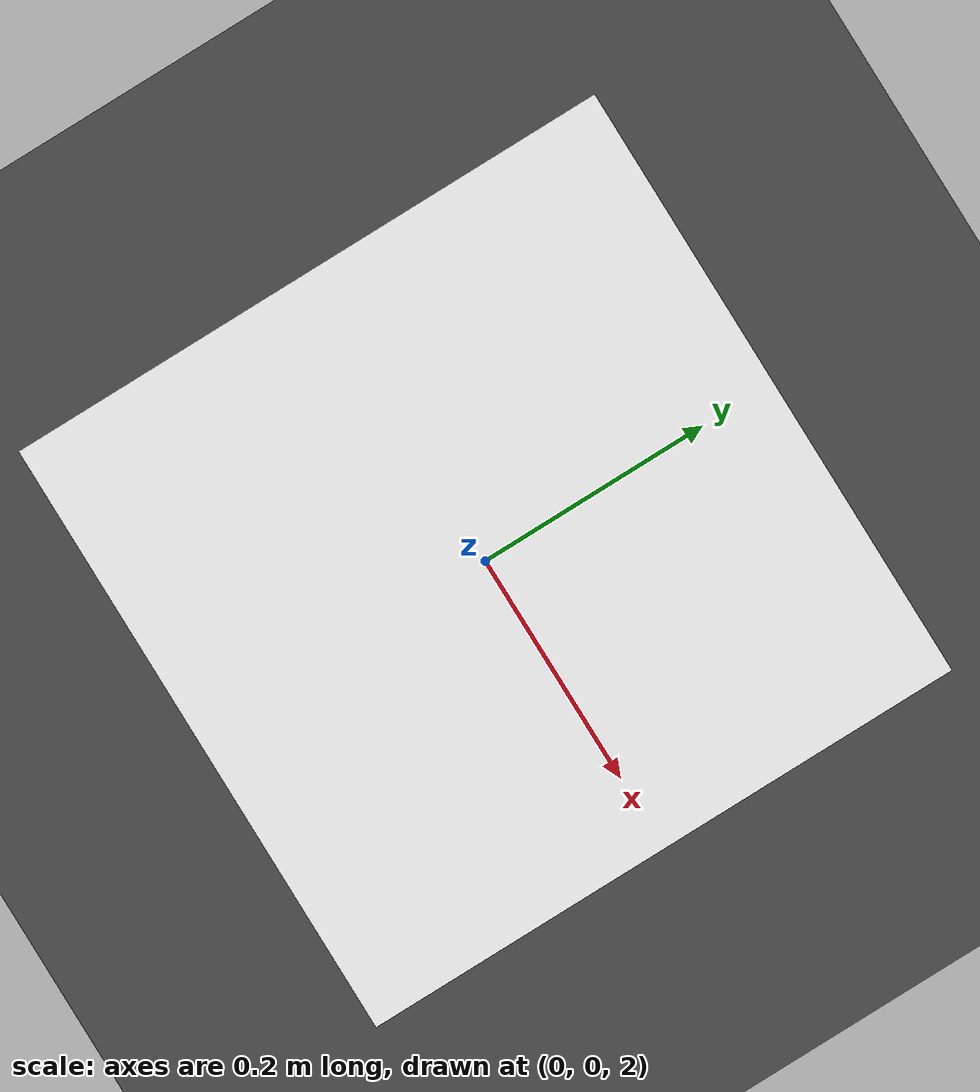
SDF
<?xml version="1.0" encoding="UTF-8"?>
<sdf version="1.9">
  <model name="flat_platform">
    <link name="platform_link">
      <visual name="platform_visual">
        <geometry>
          <box>
            <size>5 5 0.1</size>
          </box>
        </geometry>
        <material>
          <ambient>0.3 0.3 0.3 1</ambient>
          <diffuse>0.3 0.3 0.3 1</diffuse>
          <specular>0.1 0.1 0.1 1</specular>
        </material>
      </visual>
      <collision name="platform_collision">
        <geometry>
          <box>
            <size>5 5 0.1</size>
          </box>
        </geometry>
      </collision>
      <pose>0 0 2 0 0 0</pose>
      <inertial>
          <mass>10000</mass>
          <inertia>
              <ixx>10000</ixx>
              <iyy>10000</iyy>
              <izz>10000</izz>
          </inertia>
      </inertial>
      <sensor name="navsat_sensor" type="navsat">
        <always_on>1</always_on>
        <update_rate>30</update_rate>
      </sensor>
    </link>

    <link name='aruco_tag_link'>
      <pose>0 0 2.06 0 0 0</pose>
      <visual name='base_visual'>
        <geometry>
          <plane>
            <normal>0 0 1</normal>
            <size>0.5 0.5</size>
          </plane>
        </geometry>
        <material>
          <diffuse>1 1 1 1</diffuse>
          <specular>0.4 0.4 0.4 1</specular>
          <pbr>
            <metal>
              <albedo_map>model://arucotag/arucotag.png</albedo_map>
            </metal>
          </pbr>
        </material>
      </visual>
    </link>

    <joint name="aruco_joint" type="fixed">
      <parent>platform_link</parent>
      <child>aruco_tag_link</child>
    </joint>

    <plugin
      filename="libMovingPlatformController.so"
      name="custom::MovingPlatformController">
      <link_name>platform_link</link_name>
    </plugin>
  </model>
</sdf>
